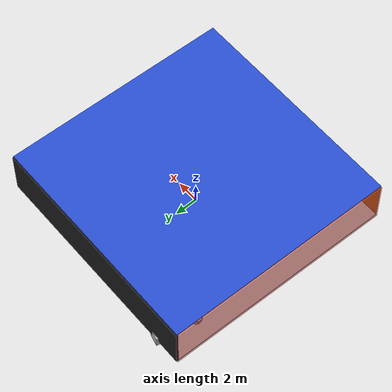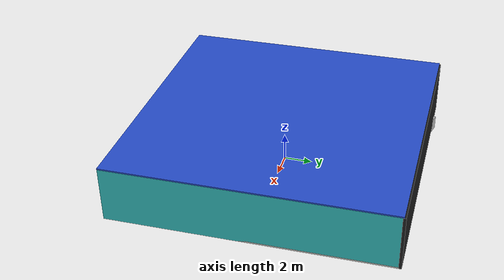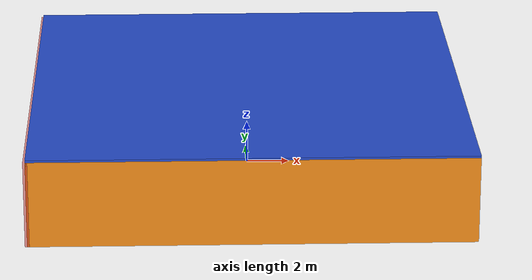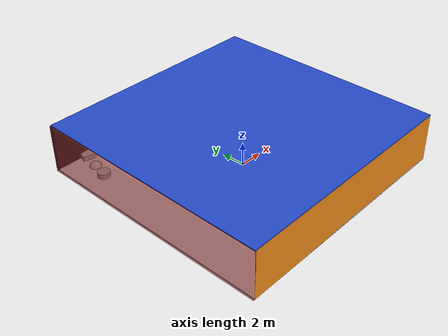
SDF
<sdf version="1.4">
 <world name="default">
  <physics type="ode">
   <max_step_size>0.001</max_step_size>
   <real_time_factor>1</real_time_factor>
   <real_time_update_rate>1000</real_time_update_rate>
   <gravity>0 0 -9.8</gravity>
  </physics>
  <scene><ambient>0.4 0.4 0.4 1</ambient><background>0.7 0.7 0.7 1</background><shadows>1</shadows></scene>
  <model name="Surrounding">
   <static>1</static>
   <link name="Ceiling">
    <collision name="Ceiling_Collision"><geometry><box><size>20 20 0.1</size></box></geometry></collision>
    <visual name="Ceiling_Visual">
     <geometry><box><size>20 20 0.1</size></box></geometry>
     <material>
      <script><uri>file://media/materials/scripts/gazebo.material</uri><name>Gazebo/BlueLaser</name></script>
     </material>
    </visual>
    <pose>0 0 4.05 0 0 0</pose>
   </link>
   <link name="Wall_South">
    <collision name="Wall_South_Collision">
     <geometry><box><size>20 0 4</size></box></geometry>
     <pose>0 0 2 0 -0 0</pose>
    </collision>
    <visual name="Wall_South_Visual">
     <pose>0 0 2 0 -0 0</pose>
     <geometry><box><size>20 0 4</size></box></geometry>
     <material>
      <script><uri>file://media/materials/scripts/gazebo.material</uri><name>Gazebo/Orange</name></script>
     </material>
    </visual>
    <velocity_decay><linear>0</linear><angular>0</angular></velocity_decay>
    <pose>0 -10 0 0 -0 0</pose>
   </link>
   <link name="Wall_East">
    <collision name="Wall_21_Collision">
     <geometry><box><size>20 0 4</size></box></geometry>
     <pose>0 0 2 0 -0 0</pose>
    </collision>
    <visual name="Wall_21_Visual">
     <pose>0 0 2 0 -0 0</pose>
     <geometry><box><size>20 0 4</size></box></geometry>
     <material>
      <script><uri>file://media/materials/scripts/gazebo.material</uri><name>Gazebo/TurquoiseGlow</name></script>
     </material>
    </visual>
    <velocity_decay><linear>0</linear><angular>0</angular></velocity_decay>
    <pose>10 0 0 0 -0 1.5708</pose>
   </link>
   <link name="Wall_North">
    <collision name="Wall_22_Collision">
     <geometry><box><size>20 0.2 4</size></box></geometry>
     <pose>0 0 2 0 -0 0</pose>
    </collision>
    <visual name="Wall_22_Visual">
     <pose>0 0 2 0 -0 0</pose>
     <geometry><box><size>20 0.2 4</size></box></geometry>
     <material>
      <script><uri>file://media/materials/scripts/gazebo.material</uri><name>Gazebo/FlatBlack</name></script>
     </material>
    </visual>
    <velocity_decay><linear>0</linear><angular>0</angular></velocity_decay>
    <pose>0 10 0 0 -0 0</pose>
   </link>
   <link name="Wall_West">
    <collision name="Wall_23_Collision">
     <geometry><box><size>20 0.2 4</size></box></geometry>
     <pose>0 0 2 0 -0 0</pose>
    </collision>
    <visual name="Wall_23_Visual">
     <pose>0 0 2 0 -0 0</pose>
     <geometry><box><size>20 0.2 4</size></box></geometry>
     <material>
      <script><uri>file://media/materials/scripts/gazebo.material</uri><name>Gazebo/RedTransparent</name></script>
     </material>
    </visual>
    <velocity_decay><linear>0</linear><angular>0</angular></velocity_decay>
    <pose>-10 0 0 0 0 -1.5708</pose>
   </link>
   <link name="Ground_link">
    <collision name="collision">
     <pose>0 0 .05 0 -0 0</pose>
     <geometry><box><size>20 20 0.1</size></box></geometry>
    </collision>
    <visual name="visual">
     <pose>0 0 .05 0 -0 0</pose>
     <geometry><box><size>20 20 0.1</size></box></geometry>
     <material>
      <script><uri>file://media/materials/scripts/gazebo.material</uri><name>Gazebo/CeilingTiled</name></script>
     </material>
    </visual>
   </link>
   <static>1</static>
  </model>
  <spherical_coordinates>
   <surface_model>EARTH_WGS84</surface_model>
   <latitude_deg>0</latitude_deg>
   <longitude_deg>0</longitude_deg>
   <elevation>0</elevation>
   <heading_deg>0</heading_deg>
  </spherical_coordinates>
  <light name="lightball_0" type="diffuse">
   <diffuse>0.8 0.8 0.8 1</diffuse>
   <specular>0.2 0.2 0.2 1</specular>
   <attenuation>
    <range>100</range>
    <constant>0.7</constant>
    <linear>0.01</linear>
    <quadratic>0.001</quadratic>
   </attenuation>
   <direction>-0.5 0.1 -0.9</direction>
   <pose>6.43728577736 5.32542394395 0.960254615559 0 0 0</pose>
  </light>
  <light name="lightball_1" type="diffuse">
   <diffuse>0.8 0.8 0.8 1</diffuse>
   <specular>0.2 0.2 0.2 1</specular>
   <attenuation>
    <range>100</range>
    <constant>0.7</constant>
    <linear>0.01</linear>
    <quadratic>0.001</quadratic>
   </attenuation>
   <direction>-0.5 0.1 -0.9</direction>
   <pose>-2.40025280159 -9.23231066379 0.715441682009 0 0 0</pose>
  </light>
  <light name="lightball_2" type="diffuse">
   <diffuse>0.8 0.8 0.8 1</diffuse>
   <specular>0.2 0.2 0.2 1</specular>
   <attenuation>
    <range>100</range>
    <constant>0.7</constant>
    <linear>0.01</linear>
    <quadratic>0.001</quadratic>
   </attenuation>
   <direction>-0.5 0.1 -0.9</direction>
   <pose>3.95713360682 8.17653874795 3.82676694234 0 0 0</pose>
  </light>
  <light name="lightball_3" type="diffuse">
   <diffuse>0.8 0.8 0.8 1</diffuse>
   <specular>0.2 0.2 0.2 1</specular>
   <attenuation>
    <range>100</range>
    <constant>0.7</constant>
    <linear>0.01</linear>
    <quadratic>0.001</quadratic>
   </attenuation>
   <direction>-0.5 0.1 -0.9</direction>
   <pose>0.403926202565 6.08490930937 2.90525032415 0 0 0</pose>
  </light>
  <light name="lightball_4" type="diffuse">
   <diffuse>0.8 0.8 0.8 1</diffuse>
   <specular>0.2 0.2 0.2 1</specular>
   <attenuation>
    <range>100</range>
    <constant>0.7</constant>
    <linear>0.01</linear>
    <quadratic>0.001</quadratic>
   </attenuation>
   <direction>-0.5 0.1 -0.9</direction>
   <pose>4.13357074198 1.80593256602 0.505295719728 0 0 0</pose>
  </light>
  <light name="lightball_5" type="diffuse">
   <diffuse>0.8 0.8 0.8 1</diffuse>
   <specular>0.2 0.2 0.2 1</specular>
   <attenuation>
    <range>100</range>
    <constant>0.7</constant>
    <linear>0.01</linear>
    <quadratic>0.001</quadratic>
   </attenuation>
   <direction>-0.5 0.1 -0.9</direction>
   <pose>-8.63401934821 8.99882461271 0.975255649483 0 0 0</pose>
  </light>
  <light name="lightball_6" type="diffuse">
   <diffuse>0.8 0.8 0.8 1</diffuse>
   <specular>0.2 0.2 0.2 1</specular>
   <attenuation>
    <range>100</range>
    <constant>0.7</constant>
    <linear>0.01</linear>
    <quadratic>0.001</quadratic>
   </attenuation>
   <direction>-0.5 0.1 -0.9</direction>
   <pose>-1.23508115144 8.66232829029 0.510474844768 0 0 0</pose>
  </light>
  <light name="lightball_7" type="diffuse">
   <diffuse>0.8 0.8 0.8 1</diffuse>
   <specular>0.2 0.2 0.2 1</specular>
   <attenuation>
    <range>100</range>
    <constant>0.7</constant>
    <linear>0.01</linear>
    <quadratic>0.001</quadratic>
   </attenuation>
   <direction>-0.5 0.1 -0.9</direction>
   <pose>-5.58431422653 0.147467454969 1.54235012242 0 0 0</pose>
  </light>
  <light name="lightball_8" type="diffuse">
   <diffuse>0.8 0.8 0.8 1</diffuse>
   <specular>0.2 0.2 0.2 1</specular>
   <attenuation>
    <range>100</range>
    <constant>0.7</constant>
    <linear>0.01</linear>
    <quadratic>0.001</quadratic>
   </attenuation>
   <direction>-0.5 0.1 -0.9</direction>
   <pose>-8.05909900344 3.78836973779 0.815604692953 0 0 0</pose>
  </light>
  <light name="lightball_9" type="diffuse">
   <diffuse>0.8 0.8 0.8 1</diffuse>
   <specular>0.2 0.2 0.2 1</specular>
   <attenuation>
    <range>100</range>
    <constant>0.7</constant>
    <linear>0.01</linear>
    <quadratic>0.001</quadratic>
   </attenuation>
   <direction>-0.5 0.1 -0.9</direction>
   <pose>-7.55078535793 0.676094060472 2.65555138662 0 0 0</pose>
  </light>
  <light name="lightball_10" type="diffuse">
   <diffuse>0.8 0.8 0.8 1</diffuse>
   <specular>0.2 0.2 0.2 1</specular>
   <attenuation>
    <range>100</range>
    <constant>0.7</constant>
    <linear>0.01</linear>
    <quadratic>0.001</quadratic>
   </attenuation>
   <direction>-0.5 0.1 -0.9</direction>
   <pose>6.08159883027 -7.35884725345 1.36102164347 0 0 0</pose>
  </light>
  <light name="lightball_11" type="diffuse">
   <diffuse>0.8 0.8 0.8 1</diffuse>
   <specular>0.2 0.2 0.2 1</specular>
   <attenuation>
    <range>100</range>
    <constant>0.7</constant>
    <linear>0.01</linear>
    <quadratic>0.001</quadratic>
   </attenuation>
   <direction>-0.5 0.1 -0.9</direction>
   <pose>-9.7682286223 8.79280321806 1.48343369344 0 0 0</pose>
  </light>
  <light name="lightball_12" type="diffuse">
   <diffuse>0.8 0.8 0.8 1</diffuse>
   <specular>0.2 0.2 0.2 1</specular>
   <attenuation>
    <range>100</range>
    <constant>0.7</constant>
    <linear>0.01</linear>
    <quadratic>0.001</quadratic>
   </attenuation>
   <direction>-0.5 0.1 -0.9</direction>
   <pose>-0.0198301283727 0.851268155714 2.64536141537 0 0 0</pose>
  </light>
  <light name="lightball_13" type="diffuse">
   <diffuse>0.8 0.8 0.8 1</diffuse>
   <specular>0.2 0.2 0.2 1</specular>
   <attenuation>
    <range>100</range>
    <constant>0.7</constant>
    <linear>0.01</linear>
    <quadratic>0.001</quadratic>
   </attenuation>
   <direction>-0.5 0.1 -0.9</direction>
   <pose>-6.09277000362 -8.16867249059 3.58995849513 0 0 0</pose>
  </light>
  <include>
   <uri>model://textured_shapes</uri>
   <pose>-7.81287990232 8.20701736116 0 0 0 2.90523745794</pose>
  </include>
  <include>
   <uri>model://construction_cone</uri>
   <pose>-4.4027366262 -3.94894834572 0 0 0 0.713976232275</pose>
  </include>
  <include><uri>model://cabinet</uri><pose>-5.0097038205 1.24765572179 0 0 0 0.313691901097</pose></include>
  <include><uri>model://cabinet</uri><pose>-4.57275042299 4.61349620336 0 0 0 1.93028293345</pose></include>
  <include><uri>model://table</uri><pose>8.22981091385 -2.1807235809 0 0 0 1.32427861368</pose></include>
  <include><uri>model://cabinet</uri><pose>7.01596767514 7.18313553135 0 0 0 2.68366222839</pose></include>
 </world>
</sdf>

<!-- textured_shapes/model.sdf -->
<sdf version="1.6">
  <model name="textured_shapes">
    <pose>0 0 0.5 0 0 0</pose>
    <link name="box">
      <pose>0 -1.5 0 0 0 0</pose>
      <collision name="collision">
        <geometry>
          <box>
            <size>1 1 1</size>
          </box>
        </geometry>
      </collision>
      <visual name="visual">
        <geometry>
          <box>
            <size>1 1 1</size>
          </box>
        </geometry>
        <material>
          <script>
            <uri>model://../model_source/models/textured_shapes/materials/scripts</uri>
            <uri>model://../model_source/models/textured_shapes/materials/textures</uri>
            <name>TexturedShape/Squares</name>
          </script>
        </material>
      </visual>
    </link>
    <link name="sphere">
      <collision name="collision">
        <geometry>
          <sphere>
            <radius>0.5</radius>
          </sphere>
        </geometry>
      </collision>
      <visual name="visual">
        <geometry>
          <sphere>
            <radius>0.5</radius>
          </sphere>
        </geometry>
        <material>
          <script>
            <uri>model://../model_source/models/textured_shapes/materials/scripts</uri>
            <uri>model://../model_source/models/textured_shapes/materials/textures</uri>
            <name>TexturedShape/Squares</name>
          </script>
        </material>
      </visual>
    </link>
    <link name="cylinder">
      <pose>0 1.5 0 0 0 0</pose>
      <collision name="collision">
        <geometry>
          <cylinder>
            <radius>0.5</radius>
            <length>1</length>
          </cylinder>
        </geometry>
      </collision>
      <visual name="visual">
        <geometry>
          <cylinder>
            <radius>0.5</radius>
            <length>1</length>
          </cylinder>
        </geometry>
        <material>
          <script>
            <uri>model://../model_source/models/textured_shapes/materials/scripts</uri>
            <uri>model://../model_source/models/textured_shapes/materials/textures</uri>
            <name>TexturedShape/Squares</name>
          </script>
        </material>
      </visual>
    </link>
  </model>
</sdf>

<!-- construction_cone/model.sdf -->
<sdf version="1.5">
  <model name="Construction Cone">
    <link name="link">
      <collision name="collision">
        <geometry>
          <mesh>
            <scale>10 10 10</scale>
            <uri>file://isr-testbed/construction_cone/meshes/construction_cone.dae</uri>
          </mesh>
        </geometry>
      </collision>
      <visual name="visual">
        <geometry>
          <mesh>
            <scale>10 10 10</scale>
            <uri>file://isr-testbed/construction_cone/meshes/construction_cone.dae</uri>
          </mesh>
        </geometry>
      </visual>
    </link>
  </model>
</sdf>

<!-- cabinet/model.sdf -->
<sdf version="1.5">
  <model name="cabinet">
    <static>true</static>
    <link name="cabinet_bottom_plate">
      <inertial>
        <pose>0 0 -1 0 0 0</pose>
        <inertia>
          <ixx>2.050000</ixx>
          <ixy>0</ixy>
          <ixz>0</ixz>
          <iyy>2.050000</iyy>
          <iyz>0</iyz>
          <izz>2.050000</izz>
        </inertia>
        <mass>25.000000</mass>
      </inertial>
      <collision name="cabinet_bottom_plate_geom">
        <pose>0 0 0.010000 0 0 0</pose>
        <geometry>
          <box>
            <size>0.450000 0.450000 0.020000</size>
          </box>
        </geometry>
      </collision>
      <visual name="cabinet_bottom_plate_geom_visual">
        <pose>0 0 0.010000 0 0 0</pose>
        <geometry>
          <box>
            <size>0.450000 0.450000 0.020000</size>
          </box>
        </geometry>
        <material>
          <script>
            <uri>model://media/materials/scripts/gazebo.material</uri>
            <name>Gazebo/Wood</name>
          </script>
        </material>
      </visual>
      <collision name="cabinet_bottom_plate_geom_cabinet_back_plate">
        <pose>0.235000 0 0.510000 0 0 0</pose>
        <geometry>
          <box>
            <size>0.020000 0.450000 1.020000</size>
          </box>
        </geometry>
      </collision>
      <visual name="cabinet_bottom_plate_geom_cabinet_back_plate_visual">
        <pose>0.235000 0 0.510000 0 0 0</pose>
        <geometry>
          <box>
            <size>0.020000 0.450000 1.020000</size>
          </box>
        </geometry>
        <material>
          <script>
            <uri>model://media/materials/scripts/gazebo.material</uri>
            <name>Gazebo/Wood</name>
          </script>
        </material>
      </visual>
      <collision name="cabinet_bottom_plate_geom_cabinet_left_plate">
        <pose>0 0.235000 0.510000 0 0 0</pose>
        <geometry>
          <box>
            <size>0.450000 0.020000 1.020000</size>
          </box>
        </geometry>
      </collision>
      <visual name="cabinet_bottom_plate_geom_cabinet_left_plate_visual">
        <pose>0 0.235000 0.510000 0 0 0</pose>
        <geometry>
          <box>
            <size>0.450000 0.020000 1.020000</size>
          </box>
        </geometry>
        <material>
          <script>
            <uri>model://media/materials/scripts/gazebo.material</uri>
            <name>Gazebo/Wood</name>
          </script>
        </material>
      </visual>
      <collision name="cabinet_bottom_plate_geom_cabinet_middle_plate">
        <pose>0 0 0.510000 0 0 0</pose>
        <geometry>
          <box>
            <size>0.450000 0.450000 0.020000</size>
          </box>
        </geometry>
      </collision>
      <visual name="cabinet_bottom_plate_geom_cabinet_middle_plate_visual">
        <pose>0 0 0.510000 0 0 0</pose>
        <geometry>
          <box>
            <size>0.450000 0.450000 0.020000</size>
          </box>
        </geometry>
        <material>
          <script>
            <uri>model://media/materials/scripts/gazebo.material</uri>
            <name>Gazebo/Wood</name>
          </script>
        </material>
      </visual>
      <collision name="cabinet_bottom_plate_geom_cabinet_right_plate">
        <pose>0 -0.235000 0.510000 0 0 0</pose>
        <geometry>
          <box>
            <size>0.450000 0.020000 1.020000</size>
          </box>
        </geometry>
      </collision>
      <visual name="cabinet_bottom_plate_geom_cabinet_right_plate_visual">
        <pose>0 -0.235000 0.510000 0 0 0</pose>
        <geometry>
          <box>
            <size>0.450000 0.020000 1.020000</size>
          </box>
        </geometry>
        <material>
          <script>
            <uri>model://media/materials/scripts/gazebo.material</uri>
            <name>Gazebo/Wood</name>
          </script>
        </material>
      </visual>
      <collision name="cabinet_bottom_plate_geom_cabinet_top_plate">
        <pose>0 0 1.010000 0 0 0</pose>
        <geometry>
          <box>
            <size>0.450000 0.450000 0.020000</size>
          </box>
        </geometry>
      </collision>
      <visual name="cabinet_bottom_plate_geom_cabinet_top_plate_visual">
        <pose>0 0 1.010000 0 0 0</pose>
        <geometry>
          <box>
            <size>0.450000 0.450000 0.020000</size>
          </box>
        </geometry>
        <material>
          <script>
            <uri>model://media/materials/scripts/gazebo.material</uri>
            <name>Gazebo/Wood</name>
          </script>
        </material>
      </visual>
    </link>
  </model>
</sdf>

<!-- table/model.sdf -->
<sdf version="1.5">
  <model name="table">
    <static>true</static>
    <link name="link">
      <collision name="surface">
        <pose>0 0 1.0 0 0 0</pose>
        <geometry>
          <box>
            <size>1.5 0.8 0.03</size>
          </box>
        </geometry>
        <surface>
          <friction>
            <ode>
              <mu>0.6</mu>
              <mu2>0.6</mu2>
            </ode>
          </friction>
        </surface>
      </collision>
      <visual name="visual1">
        <pose>0 0 1.0 0 0 0</pose>
        <geometry>
          <box>
            <size>1.5 0.8 0.03</size>
          </box>
        </geometry>
        <material>
          <script>
            <uri>model://media/materials/scripts/gazebo.material</uri>
            <name>Gazebo/Wood</name>
          </script>
        </material>
      </visual>
      <collision name="front_left_leg">
        <pose>0.68 0.38 0.5 0 0 0</pose>
        <geometry>
          <cylinder>
            <radius>0.02</radius>
            <length>1.0</length>
          </cylinder>
        </geometry>
      </collision>
      <visual name="front_left_leg">
        <pose>0.68 0.38 0.5 0 0 0</pose>
        <geometry>
          <cylinder>
            <radius>0.02</radius>
            <length>1.0</length>
          </cylinder>
        </geometry>
        <material>
          <script>
            <uri>model://media/materials/scripts/gazebo.material</uri>
            <name>Gazebo/Grey</name>
          </script>
        </material>
      </visual>
      <collision name="front_right_leg">
        <pose>0.68 -0.38 0.5 0 0 0</pose>
        <geometry>
          <cylinder>
            <radius>0.02</radius>
            <length>1.0</length>
          </cylinder>
        </geometry>
      </collision>
      <visual name="front_right_leg">
        <pose>0.68 -0.38 0.5 0 0 0</pose>
        <geometry>
          <cylinder>
            <radius>0.02</radius>
            <length>1.0</length>
          </cylinder>
        </geometry>
        <material>
          <script>
            <uri>model://media/materials/scripts/gazebo.material</uri>
            <name>Gazebo/Grey</name>
          </script>
        </material>
      </visual>
      <collision name="back_right_leg">
        <pose>-0.68 -0.38 0.5 0 0 0</pose>
        <geometry>
          <cylinder>
            <radius>0.02</radius>
            <length>1.0</length>
          </cylinder>
        </geometry>
      </collision>
      <visual name="back_right_leg">
        <pose>-0.68 -0.38 0.5 0 0 0</pose>
        <geometry>
          <cylinder>
            <radius>0.02</radius>
            <length>1.0</length>
          </cylinder>
        </geometry>
        <material>
          <script>
            <uri>model://media/materials/scripts/gazebo.material</uri>
            <name>Gazebo/Grey</name>
          </script>
        </material>
      </visual>
      <collision name="back_left_leg">
        <pose>-0.68 0.38 0.5 0 0 0</pose>
        <geometry>
          <cylinder>
            <radius>0.02</radius>
            <length>1.0</length>
          </cylinder>
        </geometry>
      </collision>
      <visual name="back_left_leg">
        <pose>-0.68 0.38 0.5 0 0 0</pose>
        <geometry>
          <cylinder>
            <radius>0.02</radius>
            <length>1.0</length>
          </cylinder>
        </geometry>
        <material>
          <script>
            <uri>model://media/materials/scripts/gazebo.material</uri>
            <name>Gazebo/Grey</name>
          </script>
        </material>
      </visual>
    </link>
  </model>
</sdf>
